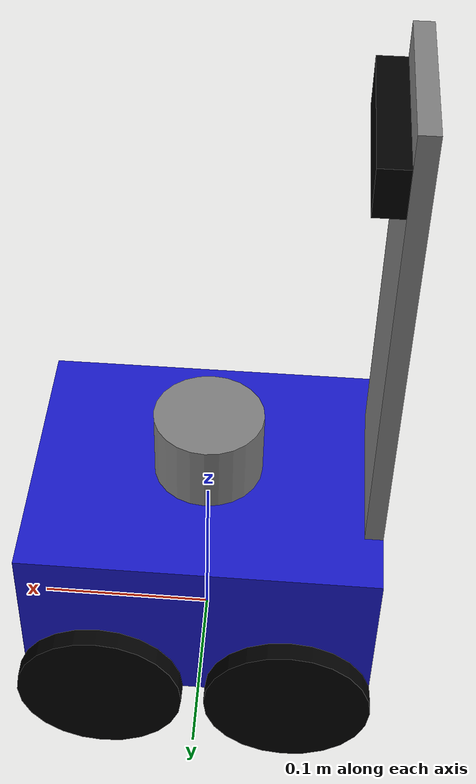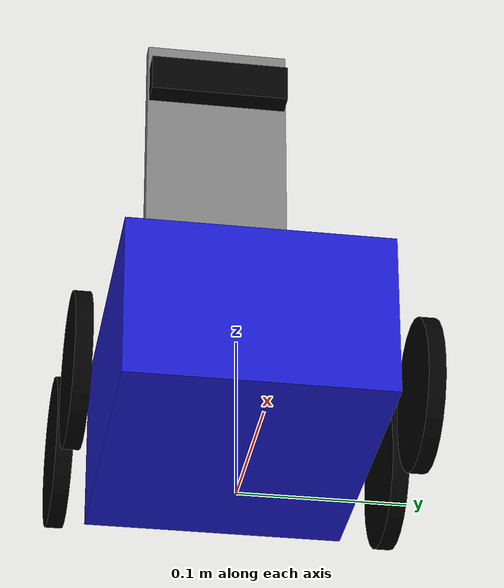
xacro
<?xml version="1.0"?>
<robot xmlns:xacro="http://www.ros.org/wiki/xacro" name="hambot">

  <!-- 0. CONFIGURABLE SPECIFIC PROPERTIES        -->
  <!-- Chassis Dimensions -->
  <xacro:property name="chassis_len"   value="0.193"/>  <!-- 193 mm -->
  <xacro:property name="chassis_width" value="0.157"/>  <!-- 157 mm -->
  <xacro:property name="chassis_hgt"   value="0.100"/>  <!-- 100 mm -->
  <xacro:property name="chassis_mass"  value="2.5"/>

  <!-- Wheel Dimensions & Placement -->
  <xacro:property name="wheel_rad"     value="0.045"/>  <!-- 45 mm radius -->
  <xacro:property name="wheel_len"     value="0.010"/>  <!-- 10 mm thickness -->
  <xacro:property name="wheel_mass"    value="0.15"/>
  <xacro:property name="wheel_joint_y" value="0.0995"/> <!-- 16mm clearance from chassis side -->
  <xacro:property name="wheel_joint_x" value="0.051"/>  <!-- 12mm clearance between wheels -->

  <!-- Ground Clearance & Coordinate Math -->
  <xacro:property name="base_link_z_offset" value="0.071"/> <!-- Ground clearance 21mm + half chassis height -->
  <xacro:property name="wheel_joint_z"      value="${wheel_rad - base_link_z_offset}"/> <!-- -26 mm relative to base_link -->

  <!-- Camera Stand (Support) -->
  <xacro:property name="stand_len"     value="0.010"/>  <!-- 10 mm -->
  <xacro:property name="stand_width"   value="0.092"/>  <!-- 92 mm -->
  <xacro:property name="stand_hgt"     value="0.250"/>  <!-- 250 mm -->
  <xacro:property name="stand_joint_x" value="-0.0915"/> <!-- Positioned at the rear end of chassis -->

  <!-- Camera -->
  <xacro:property name="camera_len"     value="0.015"/> <!-- 15 mm -->
  <xacro:property name="camera_width"   value="0.090"/> <!-- 90 mm -->
  <xacro:property name="camera_hgt"     value="0.025"/> <!-- 25 mm -->
  <xacro:property name="camera_joint_z" value="0.220"/> <!-- 220 mm above top of chassis -->
  <xacro:property name="camera_joint_x" value="0.0125"/> <!-- Flush on front face of the stand -->

  <!-- 1. MATERIALS & INERTIAL MACROS             -->
  <material name="blue"><color rgba="0.1 0.1 0.8 1.0"/></material>
  <material name="black"><color rgba="0.0 0.0 0.0 1.0"/></material>
  <material name="grey"><color rgba="0.5 0.5 0.5 1.0"/></material>

  <xacro:macro name="box_inertia" params="m w h d">
    <inertial>
      <mass value="${m}"/>
      <inertia ixx="${(m/12) * (h*h + d*d)}" ixy="0.0" ixz="0.0"
               iyy="${(m/12) * (w*w + d*d)}" iyz="0.0"
               izz="${(m/12) * (w*w + h*h)}"/>
    </inertial>
  </xacro:macro>

  <xacro:macro name="cylinder_inertia" params="m r h">
    <inertial>
      <mass value="${m}"/>
      <inertia ixx="${(m/12) * (3*r*r + h*h)}" ixy="0.0" ixz="0.0"
               iyy="${(m/12) * (3*r*r + h*h)}" iyz="0.0"
               izz="${(m/2) * (r*r)}"/>
    </inertial>
  </xacro:macro>

  <!-- 2. ROBOT BASE CHASSIS                      -->
  <link name="base_footprint"/>

  <joint name="base_footprint_joint" type="fixed">
    <parent link="base_footprint"/>
    <child link="base_link"/>
    <origin xyz="0 0 ${base_link_z_offset}" rpy="0 0 0"/>
  </joint>

  <link name="base_link">
    <visual>
      <geometry><box size="${chassis_len} ${chassis_width} ${chassis_hgt}"/></geometry>
      <material name="blue"/>
    </visual>
    <collision>
      <geometry><box size="${chassis_len} ${chassis_width} ${chassis_hgt}"/></geometry>
    </collision>
    <xacro:box_inertia m="${chassis_mass}" w="${chassis_len}" h="${chassis_width}" d="${chassis_hgt}"/>
  </link>

  <!-- 3. WHEELS (4-Wheel Diff Drive)             -->
  <xacro:macro name="wheel" params="prefix x_reflect y_reflect">
    <joint name="${prefix}_wheel_joint" type="continuous">
      <parent link="base_link"/>
      <child link="${prefix}_wheel"/>
      <origin xyz="${x_reflect*wheel_joint_x} ${y_reflect*wheel_joint_y} ${wheel_joint_z}" rpy="${-pi/2} 0 0"/>
      <axis xyz="0 0 1"/>
    </joint>

    <link name="${prefix}_wheel">
      <visual>
        <geometry><cylinder radius="${wheel_rad}" length="${wheel_len}"/></geometry>
        <material name="black"/>
      </visual>
      <collision>
        <geometry><cylinder radius="${wheel_rad}" length="${wheel_len}"/></geometry>
      </collision>
      <xacro:cylinder_inertia m="${wheel_mass}" r="${wheel_rad}" h="${wheel_len}"/>
    </link>
  </xacro:macro>

  <xacro:wheel prefix="front_left"  x_reflect="1"  y_reflect="1" />
  <xacro:wheel prefix="front_right" x_reflect="1"  y_reflect="-1" />
  <xacro:wheel prefix="rear_left"   x_reflect="-1" y_reflect="1" />
  <xacro:wheel prefix="rear_right"  x_reflect="-1" y_reflect="-1" />

  <!-- 4. SIMULATED SENSORS                       -->

  <!-- LiDAR Frame & Gazebo Sensor (Located in the Center on Top of Chassis) -->
  <link name="laser_frame">
    <visual>
      <!-- Shifted visual cylinder origin up by half its height so it sits on top of chassis -->
      <origin xyz="0 0 0.02" rpy="0 0 0"/>
      <geometry><cylinder radius="0.03" length="0.04"/></geometry>
      <material name="grey"/>
    </visual>
    <collision>
      <origin xyz="0 0 0.02" rpy="0 0 0"/>
      <geometry><cylinder radius="0.03" length="0.04"/></geometry>
    </collision>
    <xacro:cylinder_inertia m="0.1" r="0.03" h="0.04"/>
  </link>

  <joint name="laser_joint" type="fixed">
    <parent link="base_link"/>
    <child link="laser_frame"/>
    <origin xyz="0 0 ${chassis_hgt/2}" rpy="0 0 0"/>
  </joint>

  <gazebo reference="laser_frame">
    <sensor name="gpu_lidar" type="gpu_lidar">
      <pose>0 0 0 0 0 0</pose>
      <topic>scan</topic>
      <update_rate>10</update_rate>
      <ray>
        <scan>
          <horizontal>
            <samples>640</samples>
            <resolution>1</resolution>
            <min_angle>-3.14159</min_angle>
            <max_angle>3.14159</max_angle>
          </horizontal>
        </scan>
        <range>
          <min>0.12</min>
          <max>12.0</max>
          <resolution>0.01</resolution>
        </range>
      </ray>
      <always_on>1</always_on>
      <visualize>true</visualize>
    </sensor>
  </gazebo>

  <!-- Camera Stand (Support Mast) -->
  <link name="camera_stand">
    <visual>
      <!-- Visual geometry origin shifted up so the bottom of the stand aligns with the joint link origin -->
      <origin xyz="0 0 ${stand_hgt/2}" rpy="0 0 0"/>
      <geometry>
        <box size="${stand_len} ${stand_width} ${stand_hgt}"/>
      </geometry>
      <material name="grey"/>
    </visual>
    <collision>
      <origin xyz="0 0 ${stand_hgt/2}" rpy="0 0 0"/>
      <geometry>
        <box size="${stand_len} ${stand_width} ${stand_hgt}"/>
      </geometry>
    </collision>
    <xacro:box_inertia m="0.15" w="${stand_len}" h="${stand_width}" d="${stand_hgt}"/>
  </link>

  <joint name="stand_joint" type="fixed">
    <parent link="base_link"/>
    <child link="camera_stand"/>
    <origin xyz="${stand_joint_x} 0 ${chassis_hgt/2}" rpy="0 0 0"/>
  </joint>

  <!-- IMU Frame (center of chassis) -->
  <link name="imu_frame">
    <inertial>
      <mass value="0.01"/>
      <inertia ixx="1e-6" ixy="0.0" ixz="0.0" iyy="1e-6" iyz="0.0" izz="1e-6"/>
    </inertial>
  </link>

  <joint name="imu_joint" type="fixed">
    <parent link="base_link"/>
    <child link="imu_frame"/>
    <origin xyz="0 0 ${chassis_hgt/2}" rpy="0 0 0"/>
  </joint>

  <gazebo reference="imu_frame">
    <sensor name="imu_sensor" type="imu">
      <topic>/imu/data</topic>
      <update_rate>50</update_rate>
      <always_on>1</always_on>
      <visualize>true</visualize>
    </sensor>
  </gazebo>

  <!-- Camera Frame & Gazebo Sensor -->
  <link name="camera_frame">
    <visual>
      <geometry>
        <box size="${camera_len} ${camera_width} ${camera_hgt}"/>
      </geometry>
      <material name="black"/>
    </visual>
    <collision>
      <geometry>
        <box size="${camera_len} ${camera_width} ${camera_hgt}"/>
      </geometry>
    </collision>
    <xacro:box_inertia m="0.05" w="${camera_len}" h="${camera_width}" d="${camera_hgt}"/>
  </link>

  <joint name="camera_joint" type="fixed">
    <parent link="camera_stand"/>
    <child link="camera_frame"/>
    <origin xyz="${camera_joint_x} 0 ${camera_joint_z}" rpy="0 0 0"/>
  </joint>

  <gazebo reference="camera_frame">
    <sensor name="camera" type="rgbd_camera">
      <pose>0 0 0 0 0 0</pose>
      <topic>camera</topic>
      <update_rate>5</update_rate>
      <camera>
        <horizontal_fov>1.274</horizontal_fov>
        <image>
          <width>640</width>
          <height>480</height>
          <format>R8G8B8</format>
        </image>
        <clip>
          <near>0.1</near>
          <far>10.0</far>
        </clip>
      </camera>
      <always_on>1</always_on>
    </sensor>
    <sensor name="segmentation_camera" type="segmentation">
      <pose>0 0 0 0 0 0</pose>
      <topic>/segmentation</topic> <!-- Leading slash forces global topic -->
      <camera>
        <segmentation_type>semantic</segmentation_type>
        <horizontal_fov>1.274</horizontal_fov>
        <image>
          <width>640</width>
          <height>480</height>
        </image>
        <clip>
          <near>0.1</near>
          <far>10.0</far>
        </clip>
      </camera>
      <always_on>1</always_on>
      <update_rate>5</update_rate>
      <visualize>true</visualize>
    </sensor>
  </gazebo>

  <!-- 5. GAZEBO DIFF DRIVE SYSTEMS PLUGIN        -->
  <gazebo>
    <plugin filename="ignition-gazebo-diff-drive-system" name="ignition::gazebo::systems::DiffDrive">
      <left_joint>front_left_wheel_joint</left_joint>
      <left_joint>rear_left_wheel_joint</left_joint>
      <right_joint>front_right_wheel_joint</right_joint>
      <right_joint>rear_right_wheel_joint</right_joint>
      <!-- Automatically calculated from variables to maintain accurate physical values -->
      <wheel_separation>${wheel_joint_y * 2}</wheel_separation>
      <wheel_radius>${wheel_rad}</wheel_radius>
      <odom_publish_frequency>30</odom_publish_frequency>
      <topic>cmd_vel</topic>
      <odom_topic>odom</odom_topic>
      <tf_topic>/tf</tf_topic>
      <frame_id>odom</frame_id>
      <child_frame_id>base_footprint</child_frame_id>
    </plugin>

    <plugin filename="ignition-gazebo-joint-state-publisher-system" name="ignition::gazebo::systems::JointStatePublisher">
      <topic>joint_states</topic>
    </plugin>
  </gazebo>

</robot>
